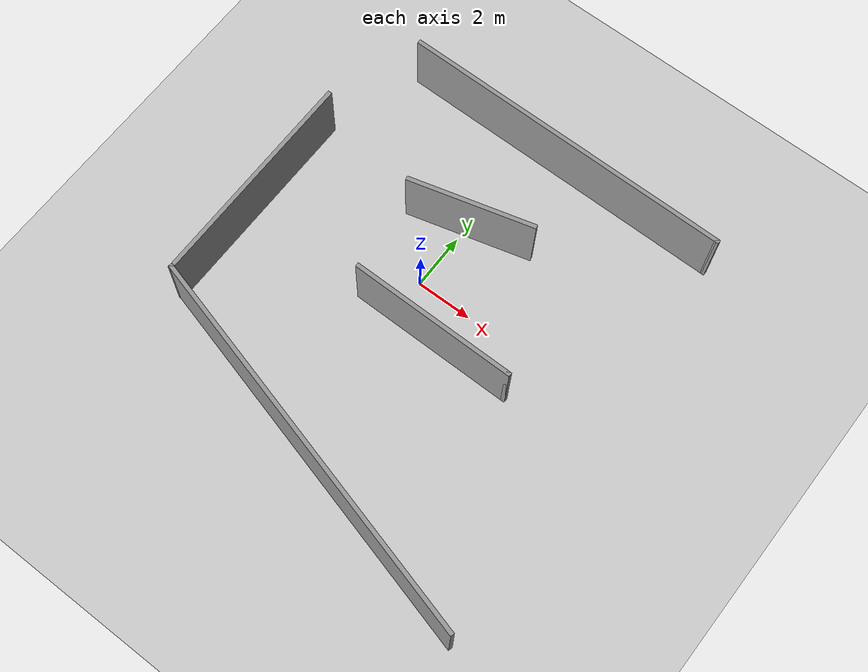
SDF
<sdf version="1.7">
 <world name="default">
  <light name="sun" type="directional">
   <pose>0 0 10 0 -0 0</pose>
   <diffuse>0.8 0.8 0.8 1</diffuse>
   <specular>0.2 0.2 0.2 1</specular>
   <attenuation>
    <range>1000</range>
    <constant>0.9</constant>
    <linear>0.01</linear>
    <quadratic>0.001</quadratic>
   </attenuation>
   <direction>-0.5 0.1 -0.9</direction>
   <spot><inner_angle>0</inner_angle><outer_angle>0</outer_angle><falloff>0</falloff></spot>
  </light>
  <model name="ground_plane">
   <static>1</static>
   <link name="link">
    <collision name="collision">
     <geometry><plane><normal>0 0 1</normal><size>100 100</size></plane></geometry>
     <surface><friction><ode><mu>100</mu><mu2>50</mu2></ode></friction></surface>
    </collision>
    <visual name="visual">
     <cast_shadows>0</cast_shadows>
     <geometry><plane><normal>0 0 1</normal><size>100 100</size></plane></geometry>
     <material>
      <script><uri>file://media/materials/scripts/gazebo.material</uri><name>Gazebo/Grey</name></script>
     </material>
    </visual>
   </link>
  </model>
  <gravity>0 0 -9.8</gravity>
  <magnetic_field>6e-06 2.3e-05 -4.2e-05</magnetic_field>
  <atmosphere type="adiabatic"/>
  <physics type="ode">
   <max_step_size>0.001</max_step_size>
   <real_time_factor>1</real_time_factor>
   <real_time_update_rate>1000</real_time_update_rate>
  </physics>
  <scene><ambient>0.4 0.4 0.4 1</ambient><background>0.7 0.7 0.7 1</background><shadows>1</shadows></scene>
  <audio><device>default</device></audio>
  <spherical_coordinates>
   <surface_model>EARTH_WGS84</surface_model>
   <latitude_deg>0</latitude_deg>
   <longitude_deg>0</longitude_deg>
   <elevation>0</elevation>
   <heading_deg>0</heading_deg>
  </spherical_coordinates>
  <model name="world">
   <pose>1.02894 -1.41845 0 0 -0 0</pose>
   <link name="Wall_1">
    <collision name="Wall_1_Collision">
     <geometry><box><size>6 0.15 2.5</size></box></geometry>
     <pose>0 0 1.25 0 -0 0</pose>
    </collision>
    <visual name="Wall_1_Visual">
     <pose>0 0 1.25 0 -0 0</pose>
     <geometry><box><size>6 0.15 2.5</size></box></geometry>
     <material>
      <script><uri>file://media/materials/scripts/gazebo.material</uri><name>Gazebo/Grey</name></script>
      <ambient>1 1 1 1</ambient>
     </material>
     <meta><layer>0</layer></meta>
    </visual>
    <pose>0.619097 -0.132736 0 0 -0 0</pose>
   </link>
   <link name="Wall_10">
    <collision name="Wall_10_Collision">
     <geometry><box><size>0.15 0.15 2.5</size></box></geometry>
     <pose>0 0 1.25 0 -0 0</pose>
    </collision>
    <visual name="Wall_10_Visual">
     <pose>0 0 1.25 0 -0 0</pose>
     <geometry><box><size>0.15 0.15 2.5</size></box></geometry>
     <material>
      <script><uri>file://media/materials/scripts/gazebo.material</uri><name>Gazebo/Grey</name></script>
      <ambient>1 1 1 1</ambient>
     </material>
     <meta><layer>0</layer></meta>
    </visual>
    <pose>-6.93052 -3.76154 0 0 -0 0</pose>
   </link>
   <link name="Wall_12">
    <collision name="Wall_12_Collision">
     <geometry><box><size>14.5 0.15 2.5</size></box></geometry>
     <pose>0 0 1.25 0 -0 0</pose>
    </collision>
    <visual name="Wall_12_Visual">
     <pose>0 0 1.25 0 -0 0</pose>
     <geometry><box><size>14.5 0.15 2.5</size></box></geometry>
     <material>
      <script><uri>file://media/materials/scripts/gazebo.material</uri><name>Gazebo/Grey</name></script>
      <ambient>1 1 1 1</ambient>
     </material>
     <meta><layer>0</layer></meta>
    </visual>
    <pose>-0 -5.61857 0 0 -0 -0.261799</pose>
   </link>
   <link name="Wall_14">
    <collision name="Wall_14_Collision">
     <geometry><box><size>12 0.15 2.5</size></box></geometry>
     <pose>0 0 1.25 0 -0 0</pose>
    </collision>
    <visual name="Wall_14_Visual">
     <pose>0 0 1.25 0 -0 0</pose>
     <geometry><box><size>12 0.15 2.5</size></box></geometry>
     <material>
      <script><uri>file://media/materials/scripts/gazebo.material</uri><name>Gazebo/Grey</name></script>
      <ambient>1 1 1 1</ambient>
     </material>
     <meta><layer>0</layer></meta>
    </visual>
    <pose>0.190482 7.49245 0 0 -0 0</pose>
   </link>
   <link name="Wall_15">
    <collision name="Wall_15_Collision">
     <geometry><box><size>0.15 0.15 2.5</size></box></geometry>
     <pose>0 0 1.25 0 -0 0</pose>
    </collision>
    <visual name="Wall_15_Visual">
     <pose>0 0 1.25 0 -0 0</pose>
     <geometry><box><size>0.15 0.15 2.5</size></box></geometry>
     <material>
      <script><uri>file://media/materials/scripts/gazebo.material</uri><name>Gazebo/Grey</name></script>
      <ambient>1 1 1 1</ambient>
     </material>
     <meta><layer>0</layer></meta>
    </visual>
    <pose>6.11548 7.49245 0 0 -0 0</pose>
   </link>
   <link name="Wall_2">
    <collision name="Wall_2_Collision">
     <geometry><box><size>0.15 0.15 2.5</size></box></geometry>
     <pose>0 0 1.25 0 -0 0</pose>
    </collision>
    <visual name="Wall_2_Visual">
     <pose>0 0 1.25 0 -0 0</pose>
     <geometry><box><size>0.15 0.15 2.5</size></box></geometry>
     <material>
      <script><uri>file://media/materials/scripts/gazebo.material</uri><name>Gazebo/Grey</name></script>
      <ambient>1 1 1 1</ambient>
     </material>
     <meta><layer>0</layer></meta>
    </visual>
    <pose>3.5441 -0.132736 0 0 -0 0</pose>
   </link>
   <link name="Wall_7">
    <collision name="Wall_7_Collision">
     <geometry><box><size>4.5 0.15 2.5</size></box></geometry>
     <pose>0 0 1.25 0 -0 0</pose>
    </collision>
    <visual name="Wall_7_Visual">
     <pose>0 0 1.25 0 -0 0</pose>
     <geometry><box><size>4.5 0.15 2.5</size></box></geometry>
     <material>
      <script><uri>file://media/materials/scripts/gazebo.material</uri><name>Gazebo/Grey</name></script>
      <ambient>1 1 1 1</ambient>
     </material>
     <meta><layer>0</layer></meta>
    </visual>
    <pose>-0.843407 3.80152 0 0 -0 -2.87979</pose>
   </link>
   <link name="Wall_9">
    <collision name="Wall_9_Collision">
     <geometry><box><size>8 0.15 2.5</size></box></geometry>
     <pose>0 0 1.25 0 -0 0</pose>
    </collision>
    <visual name="Wall_9_Visual">
     <pose>0 0 1.25 0 -0 0</pose>
     <geometry><box><size>8 0.15 2.5</size></box></geometry>
     <material>
      <script><uri>file://media/materials/scripts/gazebo.material</uri><name>Gazebo/Grey</name></script>
      <ambient>1 1 1 1</ambient>
     </material>
     <meta><layer>0</layer></meta>
    </visual>
    <pose>-6.93052 0.163455 0 0 -0 -1.5708</pose>
   </link>
   <static>1</static>
  </model>
 </world>
</sdf>
